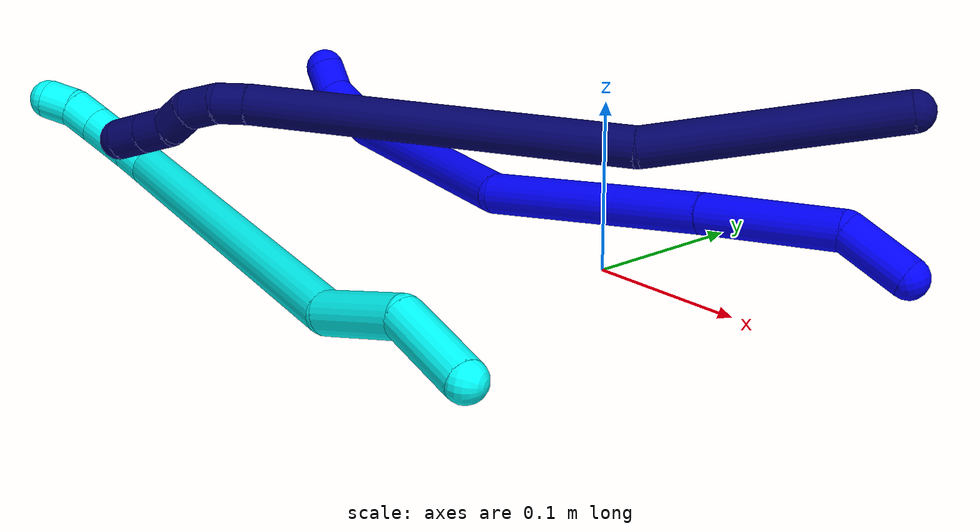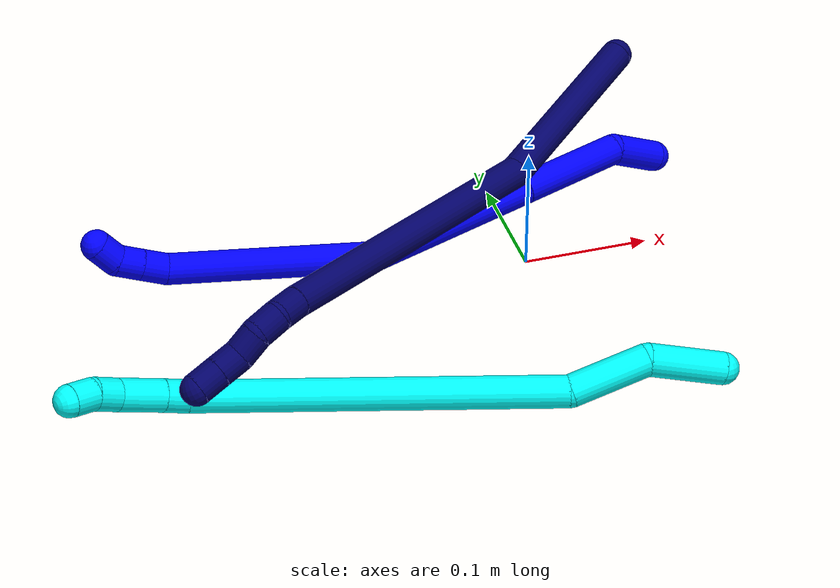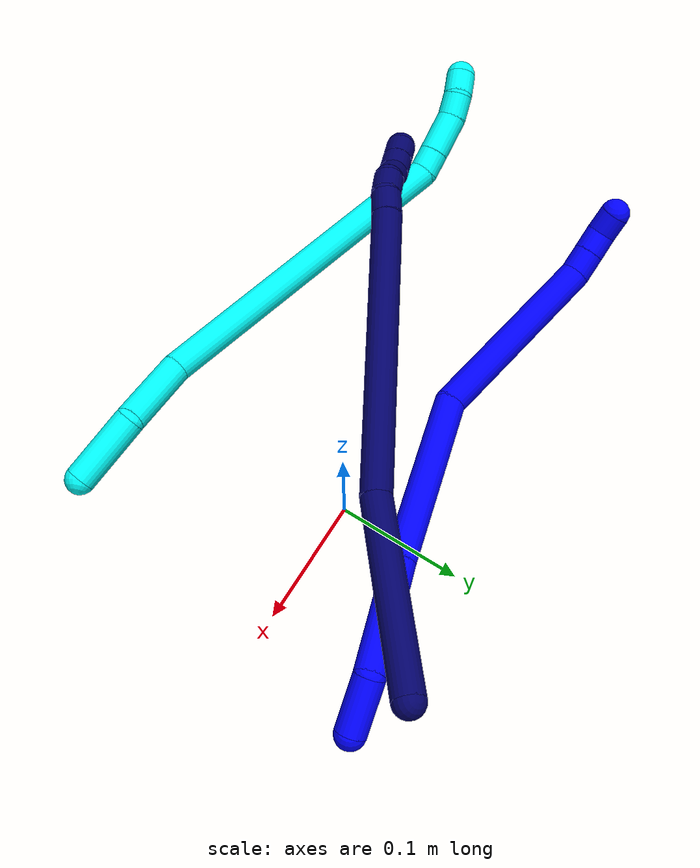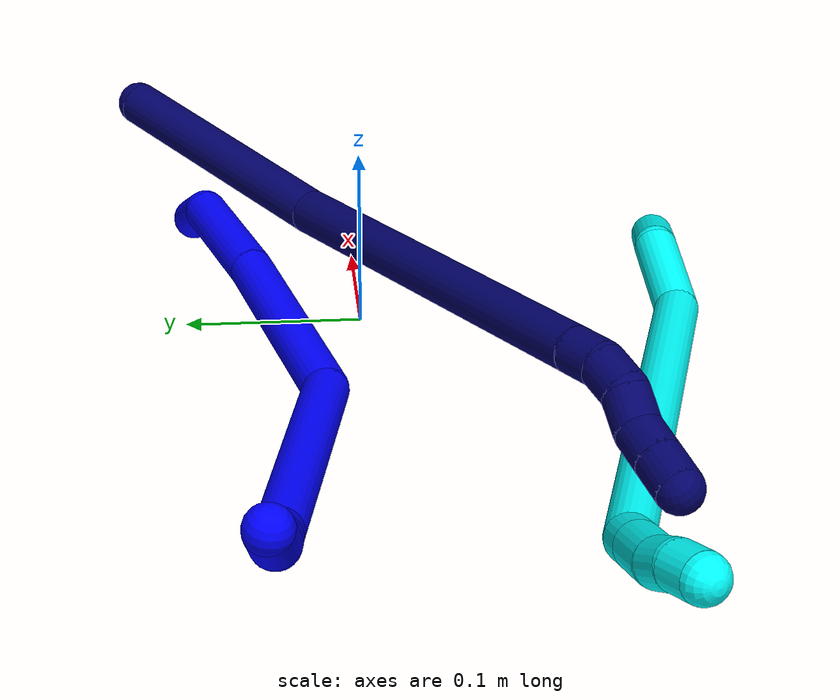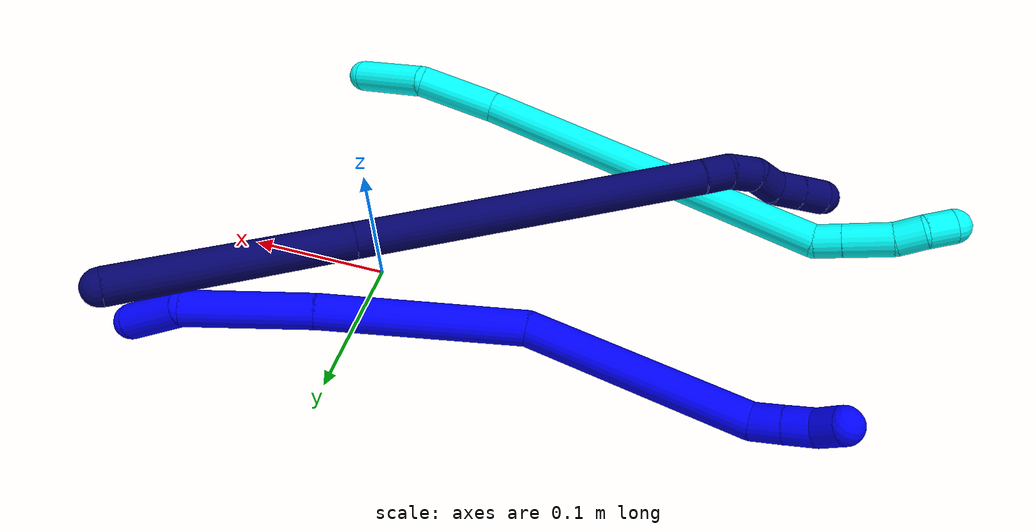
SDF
<sdf version="1.7">
 <world name="default">
  <model name="photoneo_s_sensor">
   <static>1</static>
   <pose>0 0 2 1.57079 1.57079 3.14159</pose>
   <link name="link">
    <inertial><mass>0.1</mass></inertial>
    <sensor name="sensor" type="depth">
     <update_rate>30</update_rate>
     <camera>
      <horizontal_fov>1.22</horizontal_fov>
      <image><width>1920</width><height>1200</height><format>B8G8R8</format></image>
      <clip><near>0.1</near><far>4</far></clip>
      <depth_camera><output>points</output></depth_camera>
     </camera>
     <plugin name="camera_plugin" filename="libgazebo_ros_depth_camera.so">
      <baseline>0.2</baseline>
      <alwaysOn>1</alwaysOn>
      <updateRate>0.0</updateRate>
      <cameraName>camera_ir</cameraName>
      <imageTopicName>/camera/color/image_raw</imageTopicName>
      <cameraInfoTopicName>/camera/color/camera_info</cameraInfoTopicName>
      <depthImageTopicName>/camera/depth/image_raw</depthImageTopicName>
      <depthImageCameraInfoTopicName>/camera/depth/camera_info</depthImageCameraInfoTopicName>
      <pointCloudTopicName>/camera/depth/points</pointCloudTopicName>
      <frameName>fr_optical</frameName>
      <pointCloudCutoff>0.1</pointCloudCutoff>
      <pointCloudCutoffMax>2.0</pointCloudCutoffMax>
      <distortionK1>0</distortionK1>
      <distortionK2>0</distortionK2>
      <distortionK3>0</distortionK3>
      <distortionT1>0</distortionT1>
      <distortionT2>0</distortionT2>
      <CxPrime>0</CxPrime>
      <Cx>0</Cx>
      <Cy>0</Cy>
      <focalLength>0</focalLength>
      <hackBaseline>0</hackBaseline>
     </plugin>
    </sensor>
   </link>
  </model>
  <model name="bin">
   <static>1</static>
   <link name="bottom">
    <collision name="collision-bottom">
     <pose>0 0 -0.01 0 -0 0</pose>
     <geometry><box><size>0.8 0.6 0.02</size></box></geometry>
     <surface>
      <friction><ode><mu>100</mu><mu2>100</mu2></ode></friction>
      <contact><collide_bitmask>65535</collide_bitmask></contact>
     </surface>
    </collision>
   </link>
   <link name="west_wall">
    <collision name="collision-west_wall">
     <pose>-0.41 0 0.1 0 -0 0</pose>
     <geometry><box><size>0.02 0.6 0.2</size></box></geometry>
     <surface>
      <friction><ode><mu>100</mu><mu2>100</mu2></ode></friction>
      <contact><collide_bitmask>65535</collide_bitmask></contact>
     </surface>
    </collision>
   </link>
   <link name="east_wall">
    <collision name="collision-east_wall">
     <pose>0.41 0 0.1 0 -0 0</pose>
     <geometry><box><size>0.02 0.6 0.2</size></box></geometry>
     <surface>
      <friction><ode><mu>100</mu><mu2>100</mu2></ode></friction>
      <contact><collide_bitmask>65535</collide_bitmask></contact>
     </surface>
    </collision>
   </link>
   <link name="south_wall">
    <collision name="collision-south_wall">
     <pose>0 -0.31 0.1 0 -0 0</pose>
     <geometry><box><size>0.8 0.02 0.2</size></box></geometry>
     <surface>
      <friction><ode><mu>100</mu><mu2>100</mu2></ode></friction>
      <contact><collide_bitmask>65535</collide_bitmask></contact>
     </surface>
    </collision>
   </link>
   <link name="north_wall">
    <collision name="collision-north_wall">
     <pose>0 0.31 0.1 0 -0 0</pose>
     <geometry><box><size>0.8 0.02 0.2</size></box></geometry>
     <surface>
      <friction><ode><mu>100</mu><mu2>100</mu2></ode></friction>
      <contact><collide_bitmask>65535</collide_bitmask></contact>
     </surface>
    </collision>
   </link>
  </model>
  <model name="1">
   <static>0</static>
   <link name="1">
    <collision name="collision-cylinder-e_1_1_4">
     <pose>-0.016124 -0.003632 0.014654 0.242979 -0.818259 -0.105777</pose>
     <geometry><cylinder><radius>0.0125</radius><length>0.044178</length></cylinder></geometry>
     <surface>
      <friction><ode><mu>1.16</mu><mu2>1.16</mu2><slip1>0</slip1><slip2>0</slip2></ode></friction>
      <contact><ode><kp>1e+06</kp><kd>1</kd><max_vel>0</max_vel><min_depth>0.001</min_depth></ode></contact>
     </surface>
    </collision>
    <visual name="visual-cylinder-e_1_1_4">
     <pose>-0.016124 -0.003632 0.014654 0.242979 -0.818259 -0.105777</pose>
     <geometry><cylinder><radius>0.0125</radius><length>0.044178</length></cylinder></geometry>
     <material><ambient>0 0 1 1</ambient></material>
    </visual>
    <collision name="collision-cylinder-e_2_4_5">
     <pose>-0.072965 -0.022601 0.039042 1.00528 -1.15118 -0.685292</pose>
     <geometry><cylinder><radius>0.0125</radius><length>0.08917</length></cylinder></geometry>
     <surface>
      <friction><ode><mu>1.16</mu><mu2>1.16</mu2><slip1>0</slip1><slip2>0</slip2></ode></friction>
      <contact><ode><kp>1e+06</kp><kd>1</kd><max_vel>0</max_vel><min_depth>0.001</min_depth></ode></contact>
     </surface>
    </collision>
    <visual name="visual-cylinder-e_2_4_5">
     <pose>-0.072965 -0.022601 0.039042 1.00528 -1.15118 -0.685292</pose>
     <geometry><cylinder><radius>0.0125</radius><length>0.08917</length></cylinder></geometry>
     <material><ambient>0 0 1 1</ambient></material>
    </visual>
    <collision name="collision-cylinder-e_3_5_6">
     <pose>-0.180783 -0.060097 0.061706 1.04257 -1.2056 -0.752795</pose>
     <geometry><cylinder><radius>0.0125</radius><length>0.143676</length></cylinder></geometry>
     <surface>
      <friction><ode><mu>1.16</mu><mu2>1.16</mu2><slip1>0</slip1><slip2>0</slip2></ode></friction>
      <contact><ode><kp>1e+06</kp><kd>1</kd><max_vel>0</max_vel><min_depth>0.001</min_depth></ode></contact>
     </surface>
    </collision>
    <visual name="visual-cylinder-e_3_5_6">
     <pose>-0.180783 -0.060097 0.061706 1.04257 -1.2056 -0.752795</pose>
     <geometry><cylinder><radius>0.0125</radius><length>0.143676</length></cylinder></geometry>
     <material><ambient>0 0 1 1</ambient></material>
    </visual>
    <collision name="collision-cylinder-e_4_6_7">
     <pose>-0.325239 -0.071338 0.093514 -0.524346 -1.29601 0.40086</pose>
     <geometry><cylinder><radius>0.0125</radius><length>0.160742</length></cylinder></geometry>
     <surface>
      <friction><ode><mu>1.16</mu><mu2>1.16</mu2><slip1>0</slip1><slip2>0</slip2></ode></friction>
      <contact><ode><kp>1e+06</kp><kd>1</kd><max_vel>0</max_vel><min_depth>0.001</min_depth></ode></contact>
     </surface>
    </collision>
    <visual name="visual-cylinder-e_4_6_7">
     <pose>-0.325239 -0.071338 0.093514 -0.524346 -1.29601 0.40086</pose>
     <geometry><cylinder><radius>0.0125</radius><length>0.160742</length></cylinder></geometry>
     <material><ambient>0 0 1 1</ambient></material>
    </visual>
    <collision name="collision-cylinder-e_5_7_8">
     <pose>-0.411463 -0.059776 0.118504 -0.104934 -0.964769 0.054985</pose>
     <geometry><cylinder><radius>0.0125</radius><length>0.021578</length></cylinder></geometry>
     <surface>
      <friction><ode><mu>1.16</mu><mu2>1.16</mu2><slip1>0</slip1><slip2>0</slip2></ode></friction>
      <contact><ode><kp>1e+06</kp><kd>1</kd><max_vel>0</max_vel><min_depth>0.001</min_depth></ode></contact>
     </surface>
    </collision>
    <visual name="visual-cylinder-e_5_7_8">
     <pose>-0.411463 -0.059776 0.118504 -0.104934 -0.964769 0.054985</pose>
     <geometry><cylinder><radius>0.0125</radius><length>0.021578</length></cylinder></geometry>
     <material><ambient>0 0 1 1</ambient></material>
    </visual>
    <collision name="collision-cylinder-e_6_8_9">
     <pose>-0.428602 -0.058556 0.130461 -0.098242 -0.9533 0.050758</pose>
     <geometry><cylinder><radius>0.0125</radius><length>0.02029</length></cylinder></geometry>
     <surface>
      <friction><ode><mu>1.16</mu><mu2>1.16</mu2><slip1>0</slip1><slip2>0</slip2></ode></friction>
      <contact><ode><kp>1e+06</kp><kd>1</kd><max_vel>0</max_vel><min_depth>0.001</min_depth></ode></contact>
     </surface>
    </collision>
    <visual name="visual-cylinder-e_6_8_9">
     <pose>-0.428602 -0.058556 0.130461 -0.098242 -0.9533 0.050758</pose>
     <geometry><cylinder><radius>0.0125</radius><length>0.02029</length></cylinder></geometry>
     <material><ambient>0 0 1 1</ambient></material>
    </visual>
    <collision name="collision-cylinder-e_7_9_2">
     <pose>-0.441809 -0.055817 0.144947 -0.245351 -0.506044 0.063737</pose>
     <geometry><cylinder><radius>0.0125</radius><length>0.020366</length></cylinder></geometry>
     <surface>
      <friction><ode><mu>1.16</mu><mu2>1.16</mu2><slip1>0</slip1><slip2>0</slip2></ode></friction>
      <contact><ode><kp>1e+06</kp><kd>1</kd><max_vel>0</max_vel><min_depth>0.001</min_depth></ode></contact>
     </surface>
    </collision>
    <visual name="visual-cylinder-e_7_9_2">
     <pose>-0.441809 -0.055817 0.144947 -0.245351 -0.506044 0.063737</pose>
     <geometry><cylinder><radius>0.0125</radius><length>0.020366</length></cylinder></geometry>
     <material><ambient>0 0 1 1</ambient></material>
    </visual>
    <collision name="collision-sphere-2">
     <pose>-0.446745 -0.053653 0.153587 0 -0 0</pose>
     <geometry><sphere><radius>0.0125</radius></sphere></geometry>
     <surface>
      <friction><ode><mu>1.16</mu><mu2>1.16</mu2><slip1>0</slip1><slip2>0</slip2></ode></friction>
      <contact><ode><kp>1e+06</kp><kd>1</kd><max_vel>0</max_vel><min_depth>0.001</min_depth></ode></contact>
     </surface>
    </collision>
    <visual name="visual-sphere-2">
     <pose>-0.446745 -0.053653 0.153587 0 -0 0</pose>
     <geometry><sphere><radius>0.0125</radius></sphere></geometry>
     <material><ambient>0 0 1 1</ambient></material>
    </visual>
    <collision name="collision-sphere-9">
     <pose>-0.436873 -0.05798 0.136307 0 -0 0</pose>
     <geometry><sphere><radius>0.0125</radius></sphere></geometry>
     <surface>
      <friction><ode><mu>1.16</mu><mu2>1.16</mu2><slip1>0</slip1><slip2>0</slip2></ode></friction>
      <contact><ode><kp>1e+06</kp><kd>1</kd><max_vel>0</max_vel><min_depth>0.001</min_depth></ode></contact>
     </surface>
    </collision>
    <visual name="visual-sphere-9">
     <pose>-0.436873 -0.05798 0.136307 0 -0 0</pose>
     <geometry><sphere><radius>0.0125</radius></sphere></geometry>
     <material><ambient>0 0 1 1</ambient></material>
    </visual>
    <collision name="collision-sphere-4">
     <pose>-0.032248 -0.007265 0.029308 0 -0 0</pose>
     <geometry><sphere><radius>0.0125</radius></sphere></geometry>
     <surface>
      <friction><ode><mu>1.16</mu><mu2>1.16</mu2><slip1>0</slip1><slip2>0</slip2></ode></friction>
      <contact><ode><kp>1e+06</kp><kd>1</kd><max_vel>0</max_vel><min_depth>0.001</min_depth></ode></contact>
     </surface>
    </collision>
    <visual name="visual-sphere-4">
     <pose>-0.032248 -0.007265 0.029308 0 -0 0</pose>
     <geometry><sphere><radius>0.0125</radius></sphere></geometry>
     <material><ambient>0 0 1 1</ambient></material>
    </visual>
    <collision name="collision-sphere-1">
     <geometry><sphere><radius>0.0125</radius></sphere></geometry>
     <surface>
      <friction><ode><mu>1.16</mu><mu2>1.16</mu2><slip1>0</slip1><slip2>0</slip2></ode></friction>
      <contact><ode><kp>1e+06</kp><kd>1</kd><max_vel>0</max_vel><min_depth>0.001</min_depth></ode></contact>
     </surface>
    </collision>
    <visual name="visual-sphere-1">
     <geometry><sphere><radius>0.0125</radius></sphere></geometry>
     <material><ambient>0 0 1 1</ambient></material>
    </visual>
    <collision name="collision-sphere-8">
     <pose>-0.42033 -0.059132 0.124616 0 -0 0</pose>
     <geometry><sphere><radius>0.0125</radius></sphere></geometry>
     <surface>
      <friction><ode><mu>1.16</mu><mu2>1.16</mu2><slip1>0</slip1><slip2>0</slip2></ode></friction>
      <contact><ode><kp>1e+06</kp><kd>1</kd><max_vel>0</max_vel><min_depth>0.001</min_depth></ode></contact>
     </surface>
    </collision>
    <visual name="visual-sphere-8">
     <pose>-0.42033 -0.059132 0.124616 0 -0 0</pose>
     <geometry><sphere><radius>0.0125</radius></sphere></geometry>
     <material><ambient>0 0 1 1</ambient></material>
    </visual>
    <collision name="collision-sphere-5">
     <pose>-0.113682 -0.037938 0.048775 0 -0 0</pose>
     <geometry><sphere><radius>0.0125</radius></sphere></geometry>
     <surface>
      <friction><ode><mu>1.16</mu><mu2>1.16</mu2><slip1>0</slip1><slip2>0</slip2></ode></friction>
      <contact><ode><kp>1e+06</kp><kd>1</kd><max_vel>0</max_vel><min_depth>0.001</min_depth></ode></contact>
     </surface>
    </collision>
    <visual name="visual-sphere-5">
     <pose>-0.113682 -0.037938 0.048775 0 -0 0</pose>
     <geometry><sphere><radius>0.0125</radius></sphere></geometry>
     <material><ambient>0 0 1 1</ambient></material>
    </visual>
    <collision name="collision-sphere-6">
     <pose>-0.247883 -0.082256 0.074636 0 -0 0</pose>
     <geometry><sphere><radius>0.0125</radius></sphere></geometry>
     <surface>
      <friction><ode><mu>1.16</mu><mu2>1.16</mu2><slip1>0</slip1><slip2>0</slip2></ode></friction>
      <contact><ode><kp>1e+06</kp><kd>1</kd><max_vel>0</max_vel><min_depth>0.001</min_depth></ode></contact>
     </surface>
    </collision>
    <visual name="visual-sphere-6">
     <pose>-0.247883 -0.082256 0.074636 0 -0 0</pose>
     <geometry><sphere><radius>0.0125</radius></sphere></geometry>
     <material><ambient>0 0 1 1</ambient></material>
    </visual>
    <collision name="collision-sphere-7">
     <pose>-0.402595 -0.06042 0.112392 0 -0 0</pose>
     <geometry><sphere><radius>0.0125</radius></sphere></geometry>
     <surface>
      <friction><ode><mu>1.16</mu><mu2>1.16</mu2><slip1>0</slip1><slip2>0</slip2></ode></friction>
      <contact><ode><kp>1e+06</kp><kd>1</kd><max_vel>0</max_vel><min_depth>0.001</min_depth></ode></contact>
     </surface>
    </collision>
    <visual name="visual-sphere-7">
     <pose>-0.402595 -0.06042 0.112392 0 -0 0</pose>
     <geometry><sphere><radius>0.0125</radius></sphere></geometry>
     <material><ambient>0 0 1 1</ambient></material>
    </visual>
    <inertial>
     <pose>-0.22409 -0.051784 0.072364 0 -0 0</pose>
     <mass>0.5</mass>
     <inertia>
      <ixx>0.000107</ixx>
      <ixy>0</ixy>
      <ixz>0</ixz>
      <iyy>0.000604</iyy>
      <iyz>0</iyz>
      <izz>0.000707</izz>
     </inertia>
    </inertial>
   </link>
   <pose>0.142989 0.096451 0.011498 0.133901 -0.248833 -0.076624</pose>
  </model>
  <model name="3">
   <static>0</static>
   <link name="3">
    <collision name="collision-cylinder-e_1_1_4">
     <pose>-0.00683 0.013975 0.025654 -0.498806 -0.229664 0.058738</pose>
     <geometry><cylinder><radius>0.0125</radius><length>0.060003</length></cylinder></geometry>
     <surface>
      <friction><ode><mu>1.16</mu><mu2>1.16</mu2><slip1>0</slip1><slip2>0</slip2></ode></friction>
      <contact><ode><kp>1e+06</kp><kd>1</kd><max_vel>0</max_vel><min_depth>0.001</min_depth></ode></contact>
     </surface>
    </collision>
    <visual name="visual-cylinder-e_1_1_4">
     <pose>-0.00683 0.013975 0.025654 -0.498806 -0.229664 0.058738</pose>
     <geometry><cylinder><radius>0.0125</radius><length>0.060003</length></cylinder></geometry>
     <material><ambient>0.003922 1 0.996078 1</ambient></material>
    </visual>
    <collision name="collision-cylinder-e_2_4_5">
     <pose>-0.028124 0.028269 0.079014 -0.011512 -0.48111 0.002824</pose>
     <geometry><cylinder><radius>0.0125</radius><length>0.062512</length></cylinder></geometry>
     <surface>
      <friction><ode><mu>1.16</mu><mu2>1.16</mu2><slip1>0</slip1><slip2>0</slip2></ode></friction>
      <contact><ode><kp>1e+06</kp><kd>1</kd><max_vel>0</max_vel><min_depth>0.001</min_depth></ode></contact>
     </surface>
    </collision>
    <visual name="visual-cylinder-e_2_4_5">
     <pose>-0.028124 0.028269 0.079014 -0.011512 -0.48111 0.002824</pose>
     <geometry><cylinder><radius>0.0125</radius><length>0.062512</length></cylinder></geometry>
     <material><ambient>0.003922 1 0.996078 1</ambient></material>
    </visual>
    <collision name="collision-cylinder-e_3_5_6">
     <pose>-0.10916 0.081445 0.218378 -0.442126 -0.494267 0.113276</pose>
     <geometry><cylinder><radius>0.0125</radius><length>0.280665</length></cylinder></geometry>
     <surface>
      <friction><ode><mu>1.16</mu><mu2>1.16</mu2><slip1>0</slip1><slip2>0</slip2></ode></friction>
      <contact><ode><kp>1e+06</kp><kd>1</kd><max_vel>0</max_vel><min_depth>0.001</min_depth></ode></contact>
     </surface>
    </collision>
    <visual name="visual-cylinder-e_3_5_6">
     <pose>-0.10916 0.081445 0.218378 -0.442126 -0.494267 0.113276</pose>
     <geometry><cylinder><radius>0.0125</radius><length>0.280665</length></cylinder></geometry>
     <material><ambient>0.003922 1 0.996078 1</ambient></material>
    </visual>
    <collision name="collision-cylinder-e_4_6_7">
     <pose>-0.176403 0.138046 0.339335 -0.382797 -0.066891 0.012966</pose>
     <geometry><cylinder><radius>0.0125</radius><length>0.020093</length></cylinder></geometry>
     <surface>
      <friction><ode><mu>1.16</mu><mu2>1.16</mu2><slip1>0</slip1><slip2>0</slip2></ode></friction>
      <contact><ode><kp>1e+06</kp><kd>1</kd><max_vel>0</max_vel><min_depth>0.001</min_depth></ode></contact>
     </surface>
    </collision>
    <visual name="visual-cylinder-e_4_6_7">
     <pose>-0.176403 0.138046 0.339335 -0.382797 -0.066891 0.012966</pose>
     <geometry><cylinder><radius>0.0125</radius><length>0.020093</length></cylinder></geometry>
     <material><ambient>0.003922 1 0.996078 1</ambient></material>
    </visual>
    <collision name="collision-cylinder-e_5_7_8">
     <pose>-0.178321 0.148102 0.365366 -0.360744 -0.069574 0.012692</pose>
     <geometry><cylinder><radius>0.0125</radius><length>0.035853</length></cylinder></geometry>
     <surface>
      <friction><ode><mu>1.16</mu><mu2>1.16</mu2><slip1>0</slip1><slip2>0</slip2></ode></friction>
      <contact><ode><kp>1e+06</kp><kd>1</kd><max_vel>0</max_vel><min_depth>0.001</min_depth></ode></contact>
     </surface>
    </collision>
    <visual name="visual-cylinder-e_5_7_8">
     <pose>-0.178321 0.148102 0.365366 -0.360744 -0.069574 0.012692</pose>
     <geometry><cylinder><radius>0.0125</radius><length>0.035853</length></cylinder></geometry>
     <material><ambient>0.003922 1 0.996078 1</ambient></material>
    </visual>
    <collision name="collision-cylinder-e_6_8_9">
     <pose>-0.17794 0.157694 0.391823 -0.325249 0.157182 -0.025841</pose>
     <geometry><cylinder><radius>0.0125</radius><length>0.020782</length></cylinder></geometry>
     <surface>
      <friction><ode><mu>1.16</mu><mu2>1.16</mu2><slip1>0</slip1><slip2>0</slip2></ode></friction>
      <contact><ode><kp>1e+06</kp><kd>1</kd><max_vel>0</max_vel><min_depth>0.001</min_depth></ode></contact>
     </surface>
    </collision>
    <visual name="visual-cylinder-e_6_8_9">
     <pose>-0.17794 0.157694 0.391823 -0.325249 0.157182 -0.025841</pose>
     <geometry><cylinder><radius>0.0125</radius><length>0.020782</length></cylinder></geometry>
     <material><ambient>0.003922 1 0.996078 1</ambient></material>
    </visual>
    <collision name="collision-cylinder-e_7_9_2">
     <pose>-0.175641 0.161515 0.411556 -0.054089 0.067037 -0.001814</pose>
     <geometry><cylinder><radius>0.0125</radius><length>0.020092</length></cylinder></geometry>
     <surface>
      <friction><ode><mu>1.16</mu><mu2>1.16</mu2><slip1>0</slip1><slip2>0</slip2></ode></friction>
      <contact><ode><kp>1e+06</kp><kd>1</kd><max_vel>0</max_vel><min_depth>0.001</min_depth></ode></contact>
     </surface>
    </collision>
    <visual name="visual-cylinder-e_7_9_2">
     <pose>-0.175641 0.161515 0.411556 -0.054089 0.067037 -0.001814</pose>
     <geometry><cylinder><radius>0.0125</radius><length>0.020092</length></cylinder></geometry>
     <material><ambient>0.003922 1 0.996078 1</ambient></material>
    </visual>
    <collision name="collision-sphere-2">
     <pose>-0.174968 0.162057 0.421565 0 -0 0</pose>
     <geometry><sphere><radius>0.0125</radius></sphere></geometry>
     <surface>
      <friction><ode><mu>1.16</mu><mu2>1.16</mu2><slip1>0</slip1><slip2>0</slip2></ode></friction>
      <contact><ode><kp>1e+06</kp><kd>1</kd><max_vel>0</max_vel><min_depth>0.001</min_depth></ode></contact>
     </surface>
    </collision>
    <visual name="visual-sphere-2">
     <pose>-0.174968 0.162057 0.421565 0 -0 0</pose>
     <geometry><sphere><radius>0.0125</radius></sphere></geometry>
     <material><ambient>0.003922 1 0.996078 1</ambient></material>
    </visual>
    <collision name="collision-sphere-9">
     <pose>-0.176314 0.160973 0.401547 0 -0 0</pose>
     <geometry><sphere><radius>0.0125</radius></sphere></geometry>
     <surface>
      <friction><ode><mu>1.16</mu><mu2>1.16</mu2><slip1>0</slip1><slip2>0</slip2></ode></friction>
      <contact><ode><kp>1e+06</kp><kd>1</kd><max_vel>0</max_vel><min_depth>0.001</min_depth></ode></contact>
     </surface>
    </collision>
    <visual name="visual-sphere-9">
     <pose>-0.176314 0.160973 0.401547 0 -0 0</pose>
     <geometry><sphere><radius>0.0125</radius></sphere></geometry>
     <material><ambient>0.003922 1 0.996078 1</ambient></material>
    </visual>
    <collision name="collision-sphere-4">
     <pose>-0.01366 0.02795 0.051308 0 -0 0</pose>
     <geometry><sphere><radius>0.0125</radius></sphere></geometry>
     <surface>
      <friction><ode><mu>1.16</mu><mu2>1.16</mu2><slip1>0</slip1><slip2>0</slip2></ode></friction>
      <contact><ode><kp>1e+06</kp><kd>1</kd><max_vel>0</max_vel><min_depth>0.001</min_depth></ode></contact>
     </surface>
    </collision>
    <visual name="visual-sphere-4">
     <pose>-0.01366 0.02795 0.051308 0 -0 0</pose>
     <geometry><sphere><radius>0.0125</radius></sphere></geometry>
     <material><ambient>0.003922 1 0.996078 1</ambient></material>
    </visual>
    <collision name="collision-sphere-1">
     <geometry><sphere><radius>0.0125</radius></sphere></geometry>
     <surface>
      <friction><ode><mu>1.16</mu><mu2>1.16</mu2><slip1>0</slip1><slip2>0</slip2></ode></friction>
      <contact><ode><kp>1e+06</kp><kd>1</kd><max_vel>0</max_vel><min_depth>0.001</min_depth></ode></contact>
     </surface>
    </collision>
    <visual name="visual-sphere-1">
     <geometry><sphere><radius>0.0125</radius></sphere></geometry>
     <material><ambient>0.003922 1 0.996078 1</ambient></material>
    </visual>
    <collision name="collision-sphere-8">
     <pose>-0.179567 0.154415 0.382098 0 -0 0</pose>
     <geometry><sphere><radius>0.0125</radius></sphere></geometry>
     <surface>
      <friction><ode><mu>1.16</mu><mu2>1.16</mu2><slip1>0</slip1><slip2>0</slip2></ode></friction>
      <contact><ode><kp>1e+06</kp><kd>1</kd><max_vel>0</max_vel><min_depth>0.001</min_depth></ode></contact>
     </surface>
    </collision>
    <visual name="visual-sphere-8">
     <pose>-0.179567 0.154415 0.382098 0 -0 0</pose>
     <geometry><sphere><radius>0.0125</radius></sphere></geometry>
     <material><ambient>0.003922 1 0.996078 1</ambient></material>
    </visual>
    <collision name="collision-sphere-5">
     <pose>-0.042588 0.028588 0.10672 0 -0 0</pose>
     <geometry><sphere><radius>0.0125</radius></sphere></geometry>
     <surface>
      <friction><ode><mu>1.16</mu><mu2>1.16</mu2><slip1>0</slip1><slip2>0</slip2></ode></friction>
      <contact><ode><kp>1e+06</kp><kd>1</kd><max_vel>0</max_vel><min_depth>0.001</min_depth></ode></contact>
     </surface>
    </collision>
    <visual name="visual-sphere-5">
     <pose>-0.042588 0.028588 0.10672 0 -0 0</pose>
     <geometry><sphere><radius>0.0125</radius></sphere></geometry>
     <material><ambient>0.003922 1 0.996078 1</ambient></material>
    </visual>
    <collision name="collision-sphere-6">
     <pose>-0.175732 0.134302 0.330036 0 -0 0</pose>
     <geometry><sphere><radius>0.0125</radius></sphere></geometry>
     <surface>
      <friction><ode><mu>1.16</mu><mu2>1.16</mu2><slip1>0</slip1><slip2>0</slip2></ode></friction>
      <contact><ode><kp>1e+06</kp><kd>1</kd><max_vel>0</max_vel><min_depth>0.001</min_depth></ode></contact>
     </surface>
    </collision>
    <visual name="visual-sphere-6">
     <pose>-0.175732 0.134302 0.330036 0 -0 0</pose>
     <geometry><sphere><radius>0.0125</radius></sphere></geometry>
     <material><ambient>0.003922 1 0.996078 1</ambient></material>
    </visual>
    <collision name="collision-sphere-7">
     <pose>-0.177075 0.14179 0.348633 0 -0 0</pose>
     <geometry><sphere><radius>0.0125</radius></sphere></geometry>
     <surface>
      <friction><ode><mu>1.16</mu><mu2>1.16</mu2><slip1>0</slip1><slip2>0</slip2></ode></friction>
      <contact><ode><kp>1e+06</kp><kd>1</kd><max_vel>0</max_vel><min_depth>0.001</min_depth></ode></contact>
     </surface>
    </collision>
    <visual name="visual-sphere-7">
     <pose>-0.177075 0.14179 0.348633 0 -0 0</pose>
     <geometry><sphere><radius>0.0125</radius></sphere></geometry>
     <material><ambient>0.003922 1 0.996078 1</ambient></material>
    </visual>
    <inertial>
     <pose>-0.09994 0.080141 0.208199 0 -0 0</pose>
     <mass>0.5</mass>
     <inertia>
      <ixx>0.001843</ixx>
      <ixy>0</ixy>
      <ixz>0</ixz>
      <iyy>0.001955</iyy>
      <iyz>0</iyz>
      <izz>0.000217</izz>
     </inertia>
    </inertial>
   </link>
   <pose>0.092285 -0.185727 0.011446 1.44448 -0.77559 -1.0946</pose>
  </model>
  <model name="7">
   <static>0</static>
   <link name="7">
    <collision name="collision-cylinder-e_1_1_4">
     <pose>-0.073111 -0.0242 -0.013737 2.0871 -1.20712 -1.73892</pose>
     <geometry><cylinder><radius>0.0125</radius><length>0.156455</length></cylinder></geometry>
     <surface>
      <friction><ode><mu>1.16</mu><mu2>1.16</mu2><slip1>0</slip1><slip2>0</slip2></ode></friction>
      <contact><ode><kp>1e+06</kp><kd>1</kd><max_vel>0</max_vel><min_depth>0.001</min_depth></ode></contact>
     </surface>
    </collision>
    <visual name="visual-cylinder-e_1_1_4">
     <pose>-0.073111 -0.0242 -0.013737 2.0871 -1.20712 -1.73892</pose>
     <geometry><cylinder><radius>0.0125</radius><length>0.156455</length></cylinder></geometry>
     <material><ambient>0.003922 0 0.403922 1</ambient></material>
    </visual>
    <collision name="collision-cylinder-e_2_4_5">
     <pose>-0.261798 -0.08182 -0.017699 1.28623 -1.27817 -1.01624</pose>
     <geometry><cylinder><radius>0.0125</radius><length>0.241415</length></cylinder></geometry>
     <surface>
      <friction><ode><mu>1.16</mu><mu2>1.16</mu2><slip1>0</slip1><slip2>0</slip2></ode></friction>
      <contact><ode><kp>1e+06</kp><kd>1</kd><max_vel>0</max_vel><min_depth>0.001</min_depth></ode></contact>
     </surface>
    </collision>
    <visual name="visual-cylinder-e_2_4_5">
     <pose>-0.261798 -0.08182 -0.017699 1.28623 -1.27817 -1.01624</pose>
     <geometry><cylinder><radius>0.0125</radius><length>0.241415</length></cylinder></geometry>
     <material><ambient>0.003922 0 0.403922 1</ambient></material>
    </visual>
    <collision name="collision-cylinder-e_3_5_6">
     <pose>-0.387144 -0.118379 -0.007918 1.56916 -1.25992 -1.25837</pose>
     <geometry><cylinder><radius>0.0125</radius><length>0.020523</length></cylinder></geometry>
     <surface>
      <friction><ode><mu>1.16</mu><mu2>1.16</mu2><slip1>0</slip1><slip2>0</slip2></ode></friction>
      <contact><ode><kp>1e+06</kp><kd>1</kd><max_vel>0</max_vel><min_depth>0.001</min_depth></ode></contact>
     </surface>
    </collision>
    <visual name="visual-cylinder-e_3_5_6">
     <pose>-0.387144 -0.118379 -0.007918 1.56916 -1.25992 -1.25837</pose>
     <geometry><cylinder><radius>0.0125</radius><length>0.020523</length></cylinder></geometry>
     <material><ambient>0.003922 0 0.403922 1</ambient></material>
    </visual>
    <collision name="collision-cylinder-e_4_6_7">
     <pose>-0.407324 -0.121942 -0.009424 2.86773 -1.42112 -2.82402</pose>
     <geometry><cylinder><radius>0.0125</radius><length>0.021056</length></cylinder></geometry>
     <surface>
      <friction><ode><mu>1.16</mu><mu2>1.16</mu2><slip1>0</slip1><slip2>0</slip2></ode></friction>
      <contact><ode><kp>1e+06</kp><kd>1</kd><max_vel>0</max_vel><min_depth>0.001</min_depth></ode></contact>
     </surface>
    </collision>
    <visual name="visual-cylinder-e_4_6_7">
     <pose>-0.407324 -0.121942 -0.009424 2.86773 -1.42112 -2.82402</pose>
     <geometry><cylinder><radius>0.0125</radius><length>0.021056</length></cylinder></geometry>
     <material><ambient>0.003922 0 0.403922 1</ambient></material>
    </visual>
    <collision name="collision-cylinder-e_5_7_8">
     <pose>-0.426524 -0.119576 -0.015005 -2.54041 -1.05922 2.1676</pose>
     <geometry><cylinder><radius>0.0125</radius><length>0.020161</length></cylinder></geometry>
     <surface>
      <friction><ode><mu>1.16</mu><mu2>1.16</mu2><slip1>0</slip1><slip2>0</slip2></ode></friction>
      <contact><ode><kp>1e+06</kp><kd>1</kd><max_vel>0</max_vel><min_depth>0.001</min_depth></ode></contact>
     </surface>
    </collision>
    <visual name="visual-cylinder-e_5_7_8">
     <pose>-0.426524 -0.119576 -0.015005 -2.54041 -1.05922 2.1676</pose>
     <geometry><cylinder><radius>0.0125</radius><length>0.020161</length></cylinder></geometry>
     <material><ambient>0.003922 0 0.403922 1</ambient></material>
    </visual>
    <collision name="collision-cylinder-e_6_8_9">
     <pose>-0.445222 -0.116443 -0.020424 -2.89401 -1.43124 2.85727</pose>
     <geometry><cylinder><radius>0.0125</radius><length>0.02001</length></cylinder></geometry>
     <surface>
      <friction><ode><mu>1.16</mu><mu2>1.16</mu2><slip1>0</slip1><slip2>0</slip2></ode></friction>
      <contact><ode><kp>1e+06</kp><kd>1</kd><max_vel>0</max_vel><min_depth>0.001</min_depth></ode></contact>
     </surface>
    </collision>
    <visual name="visual-cylinder-e_6_8_9">
     <pose>-0.445222 -0.116443 -0.020424 -2.89401 -1.43124 2.85727</pose>
     <geometry><cylinder><radius>0.0125</radius><length>0.02001</length></cylinder></geometry>
     <material><ambient>0.003922 0 0.403922 1</ambient></material>
    </visual>
    <collision name="collision-cylinder-e_7_9_2">
     <pose>-0.465216 -0.115765 -0.023186 -2.90732 -1.42784 2.87159</pose>
     <geometry><cylinder><radius>0.0125</radius><length>0.020379</length></cylinder></geometry>
     <surface>
      <friction><ode><mu>1.16</mu><mu2>1.16</mu2><slip1>0</slip1><slip2>0</slip2></ode></friction>
      <contact><ode><kp>1e+06</kp><kd>1</kd><max_vel>0</max_vel><min_depth>0.001</min_depth></ode></contact>
     </surface>
    </collision>
    <visual name="visual-cylinder-e_7_9_2">
     <pose>-0.465216 -0.115765 -0.023186 -2.90732 -1.42784 2.87159</pose>
     <geometry><cylinder><radius>0.0125</radius><length>0.020379</length></cylinder></geometry>
     <material><ambient>0.003922 0 0.403922 1</ambient></material>
    </visual>
    <collision name="collision-sphere-2">
     <pose>-0.475301 -0.115428 -0.024598 0 -0 0</pose>
     <geometry><sphere><radius>0.0125</radius></sphere></geometry>
     <surface>
      <friction><ode><mu>1.16</mu><mu2>1.16</mu2><slip1>0</slip1><slip2>0</slip2></ode></friction>
      <contact><ode><kp>1e+06</kp><kd>1</kd><max_vel>0</max_vel><min_depth>0.001</min_depth></ode></contact>
     </surface>
    </collision>
    <visual name="visual-sphere-2">
     <pose>-0.475301 -0.115428 -0.024598 0 -0 0</pose>
     <geometry><sphere><radius>0.0125</radius></sphere></geometry>
     <material><ambient>0.003922 0 0.403922 1</ambient></material>
    </visual>
    <collision name="collision-sphere-9">
     <pose>-0.45513 -0.116102 -0.021774 0 -0 0</pose>
     <geometry><sphere><radius>0.0125</radius></sphere></geometry>
     <surface>
      <friction><ode><mu>1.16</mu><mu2>1.16</mu2><slip1>0</slip1><slip2>0</slip2></ode></friction>
      <contact><ode><kp>1e+06</kp><kd>1</kd><max_vel>0</max_vel><min_depth>0.001</min_depth></ode></contact>
     </surface>
    </collision>
    <visual name="visual-sphere-9">
     <pose>-0.45513 -0.116102 -0.021774 0 -0 0</pose>
     <geometry><sphere><radius>0.0125</radius></sphere></geometry>
     <material><ambient>0.003922 0 0.403922 1</ambient></material>
    </visual>
    <collision name="collision-sphere-4">
     <pose>-0.146222 -0.048399 -0.027474 0 -0 0</pose>
     <geometry><sphere><radius>0.0125</radius></sphere></geometry>
     <surface>
      <friction><ode><mu>1.16</mu><mu2>1.16</mu2><slip1>0</slip1><slip2>0</slip2></ode></friction>
      <contact><ode><kp>1e+06</kp><kd>1</kd><max_vel>0</max_vel><min_depth>0.001</min_depth></ode></contact>
     </surface>
    </collision>
    <visual name="visual-sphere-4">
     <pose>-0.146222 -0.048399 -0.027474 0 -0 0</pose>
     <geometry><sphere><radius>0.0125</radius></sphere></geometry>
     <material><ambient>0.003922 0 0.403922 1</ambient></material>
    </visual>
    <collision name="collision-sphere-1">
     <geometry><sphere><radius>0.0125</radius></sphere></geometry>
     <surface>
      <friction><ode><mu>1.16</mu><mu2>1.16</mu2><slip1>0</slip1><slip2>0</slip2></ode></friction>
      <contact><ode><kp>1e+06</kp><kd>1</kd><max_vel>0</max_vel><min_depth>0.001</min_depth></ode></contact>
     </surface>
    </collision>
    <visual name="visual-sphere-1">
     <geometry><sphere><radius>0.0125</radius></sphere></geometry>
     <material><ambient>0.003922 0 0.403922 1</ambient></material>
    </visual>
    <collision name="collision-sphere-8">
     <pose>-0.435314 -0.116784 -0.019075 0 -0 0</pose>
     <geometry><sphere><radius>0.0125</radius></sphere></geometry>
     <surface>
      <friction><ode><mu>1.16</mu><mu2>1.16</mu2><slip1>0</slip1><slip2>0</slip2></ode></friction>
      <contact><ode><kp>1e+06</kp><kd>1</kd><max_vel>0</max_vel><min_depth>0.001</min_depth></ode></contact>
     </surface>
    </collision>
    <visual name="visual-sphere-8">
     <pose>-0.435314 -0.116784 -0.019075 0 -0 0</pose>
     <geometry><sphere><radius>0.0125</radius></sphere></geometry>
     <material><ambient>0.003922 0 0.403922 1</ambient></material>
    </visual>
    <collision name="collision-sphere-5">
     <pose>-0.377375 -0.11524 -0.007923 0 -0 0</pose>
     <geometry><sphere><radius>0.0125</radius></sphere></geometry>
     <surface>
      <friction><ode><mu>1.16</mu><mu2>1.16</mu2><slip1>0</slip1><slip2>0</slip2></ode></friction>
      <contact><ode><kp>1e+06</kp><kd>1</kd><max_vel>0</max_vel><min_depth>0.001</min_depth></ode></contact>
     </surface>
    </collision>
    <visual name="visual-sphere-5">
     <pose>-0.377375 -0.11524 -0.007923 0 -0 0</pose>
     <geometry><sphere><radius>0.0125</radius></sphere></geometry>
     <material><ambient>0.003922 0 0.403922 1</ambient></material>
    </visual>
    <collision name="collision-sphere-6">
     <pose>-0.396914 -0.121518 -0.007913 0 -0 0</pose>
     <geometry><sphere><radius>0.0125</radius></sphere></geometry>
     <surface>
      <friction><ode><mu>1.16</mu><mu2>1.16</mu2><slip1>0</slip1><slip2>0</slip2></ode></friction>
      <contact><ode><kp>1e+06</kp><kd>1</kd><max_vel>0</max_vel><min_depth>0.001</min_depth></ode></contact>
     </surface>
    </collision>
    <visual name="visual-sphere-6">
     <pose>-0.396914 -0.121518 -0.007913 0 -0 0</pose>
     <geometry><sphere><radius>0.0125</radius></sphere></geometry>
     <material><ambient>0.003922 0 0.403922 1</ambient></material>
    </visual>
    <collision name="collision-sphere-7">
     <pose>-0.417735 -0.122367 -0.010936 0 -0 0</pose>
     <geometry><sphere><radius>0.0125</radius></sphere></geometry>
     <surface>
      <friction><ode><mu>1.16</mu><mu2>1.16</mu2><slip1>0</slip1><slip2>0</slip2></ode></friction>
      <contact><ode><kp>1e+06</kp><kd>1</kd><max_vel>0</max_vel><min_depth>0.001</min_depth></ode></contact>
     </surface>
    </collision>
    <visual name="visual-sphere-7">
     <pose>-0.417735 -0.122367 -0.010936 0 -0 0</pose>
     <geometry><sphere><radius>0.0125</radius></sphere></geometry>
     <material><ambient>0.003922 0 0.403922 1</ambient></material>
    </visual>
    <inertial>
     <pose>-0.236303 -0.071272 -0.015933 0 -0 0</pose>
     <mass>0.5</mass>
     <inertia>
      <ixx>-0.000282</ixx>
      <ixy>0</ixy>
      <ixz>0</ixz>
      <iyy>0.00098</iyy>
      <iyz>0</iyz>
      <izz>0.001869</izz>
     </inertia>
    </inertial>
   </link>
   <pose>0.117287 0.126026 0.096294 -0.538223 -0.205168 0.324107</pose>
  </model>
 </world>
</sdf>
